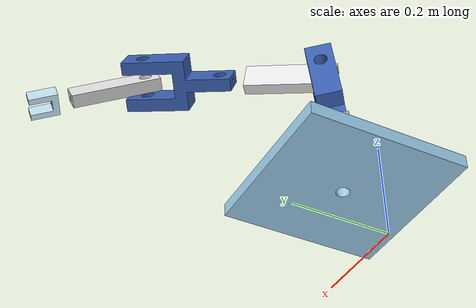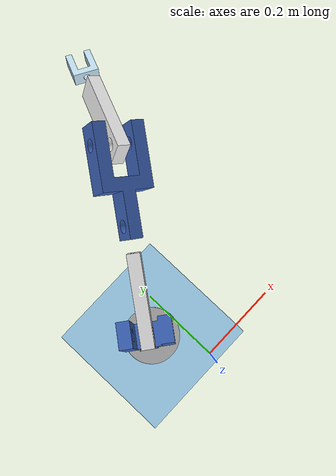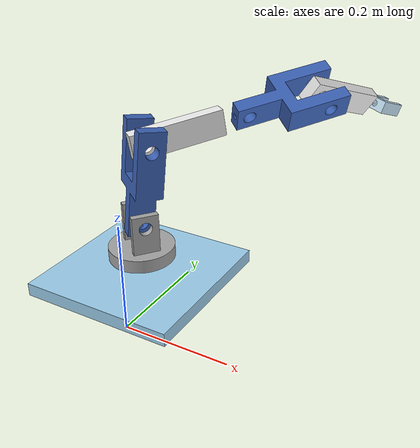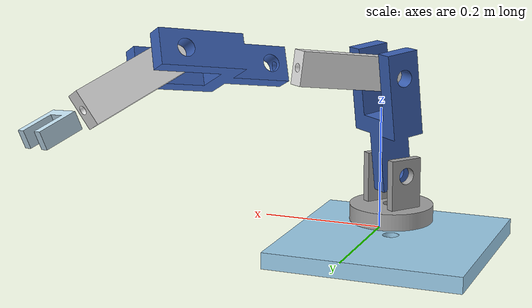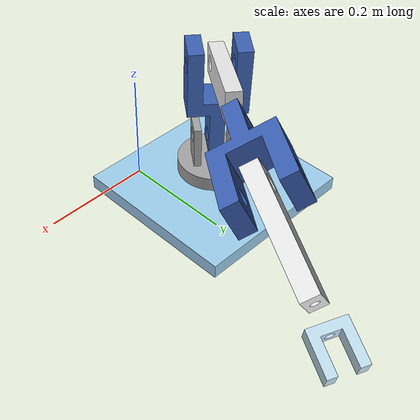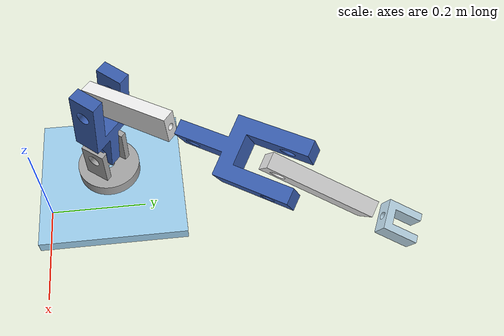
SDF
<?xml version="1.0" ?>
<!-- Generated using onshape-to-robot -->
<!-- Onshape document_id: 4af8569930bfdc776139afc6 -->
<sdf version="1.7">
  <model name="mybot">
    <!-- Link base -->
    <link name="base">
      <inertial>
        <pose>-0.0595984 0.133273 0.0193778 0 0 0</pose>
        <mass>6.33654</mass>
        <inertia>
          <ixx>0.0496653</ixx>
          <ixy>0</ixy>
          <ixz>0</ixz>
          <iyy>0.0496653</iyy>
          <iyz>0</iyz>
          <izz>0.0986492</izz>
        </inertia>
      </inertial>
      <pose>0 0 0 0 -0 0</pose>
      <!-- Part base -->
      <visual name="base_visual_mesh_1">
        <pose relative_to="base">-0.0595984 0.133273 0.00667784 0 -0 0</pose>
        <geometry>
          <mesh>
            <uri>model://mybot/assets/base.stl</uri>
          </mesh>
        </geometry>
        <material>
          <ambient>0.615686 0.811765 0.929412 1</ambient>
          <diffuse>0.615686 0.811765 0.929412 1</diffuse>
          <specular>0.1 0.1 0.1 1</specular>
          <emissive>0 0 0 0</emissive>
        </material>
      </visual>
      <collision name="base_collision_mesh_2">
        <pose relative_to="base">-0.0595984 0.133273 0.00667784 0 -0 0</pose>
        <geometry>
          <mesh>
            <uri>model://mybot/assets/base.stl</uri>
          </mesh>
        </geometry>
      </collision>
    </link>
    <joint name="base_fixed_world" type="fixed">
      <parent>world</parent>
      <child>base</child>
    </joint>
    <!-- Link swivle -->
    <link name="swivle">
      <inertial>
        <pose>0 -0 -0.0232936 0 0 0</pose>
        <mass>1.06472</mass>
        <inertia>
          <ixx>0.00152741</ixx>
          <ixy>0</ixy>
          <ixz>0</ixz>
          <iyy>0.0017074</iyy>
          <iyz>0</iyz>
          <izz>0.00204008</izz>
        </inertia>
      </inertial>
      <pose relative_to="base_rot">0 0 0 0 -0 0</pose>
      <!-- Part swivle -->
      <visual name="swivle_visual_mesh_1">
        <pose relative_to="swivle">0 0 0.0508 3.14159 -0 0</pose>
        <geometry>
          <mesh>
            <uri>model://mybot/assets/swivle.stl</uri>
          </mesh>
        </geometry>
        <material>
          <ambient>0.647059 0.647059 0.647059 1</ambient>
          <diffuse>0.647059 0.647059 0.647059 1</diffuse>
          <specular>0.1 0.1 0.1 1</specular>
          <emissive>0 0 0 0</emissive>
        </material>
      </visual>
      <collision name="swivle_collision_mesh_2">
        <pose relative_to="swivle">0 0 0.0508 3.14159 -0 0</pose>
        <geometry>
          <mesh>
            <uri>model://mybot/assets/swivle.stl</uri>
          </mesh>
        </geometry>
      </collision>
    </link>
    <!-- Link arm1 -->
    <link name="arm1">
      <inertial>
        <pose>-0.0757655 -0.0589887 -0.0127 0 0 0</pose>
        <mass>1.26286</mass>
        <inertia>
          <ixx>0.00280173</ixx>
          <ixy>-0.00158076</ixy>
          <ixz>-1e-11</ixz>
          <iyy>0.00360134</iyy>
          <iyz>-3.8e-11</iyz>
          <izz>0.0038425</izz>
        </inertia>
      </inertial>
      <pose relative_to="joint1">0 0 0 0 -0 0</pose>
      <!-- Part arm1 -->
      <visual name="arm1_visual_mesh_1">
        <pose relative_to="arm1">0 0.127 -0.0127 1.5708 1.5708 0</pose>
        <geometry>
          <mesh>
            <uri>model://mybot/assets/arm1.stl</uri>
          </mesh>
        </geometry>
        <material>
          <ambient>0.231373 0.380392 0.705882 1</ambient>
          <diffuse>0.231373 0.380392 0.705882 1</diffuse>
          <specular>0.1 0.1 0.1 1</specular>
          <emissive>0 0 0 0</emissive>
        </material>
      </visual>
      <collision name="arm1_collision_mesh_2">
        <pose relative_to="arm1">0 0.127 -0.0127 1.5708 1.5708 0</pose>
        <geometry>
          <mesh>
            <uri>model://mybot/assets/arm1.stl</uri>
          </mesh>
        </geometry>
      </collision>
    </link>
    <!-- Link arm2 -->
    <link name="arm2">
      <inertial>
        <pose>-0.0543508 -0.0377625 -0.0127 0 0 0</pose>
        <mass>0.575994</mass>
        <inertia>
          <ixx>0.000587462</ixx>
          <ixy>-0.00061082</ixy>
          <ixz>0</ixz>
          <iyy>0.00104221</iyy>
          <iyz>-0</iyz>
          <izz>0.00156698</izz>
        </inertia>
      </inertial>
      <pose relative_to="joint2">0 0 0 0 -0 0</pose>
      <!-- Part arm2 -->
      <visual name="arm2_visual_mesh_1">
        <pose relative_to="arm2">0.120251 0.220624 -0.0127 1.5708 1.5708 0</pose>
        <geometry>
          <mesh>
            <uri>model://mybot/assets/arm2.stl</uri>
          </mesh>
        </geometry>
        <material>
          <ambient>0.917647 0.917647 0.917647 1</ambient>
          <diffuse>0.917647 0.917647 0.917647 1</diffuse>
          <specular>0.1 0.1 0.1 1</specular>
          <emissive>0 0 0 0</emissive>
        </material>
      </visual>
      <collision name="arm2_collision_mesh_2">
        <pose relative_to="arm2">0.120251 0.220624 -0.0127 1.5708 1.5708 0</pose>
        <geometry>
          <mesh>
            <uri>model://mybot/assets/arm2.stl</uri>
          </mesh>
        </geometry>
      </collision>
    </link>
    <!-- Link arm1_2 -->
    <link name="arm1_2">
      <inertial>
        <pose>-1.33e-09 -3.237e-09 -0.146821 0 0 0</pose>
        <mass>1.26286</mass>
        <inertia>
          <ixx>0.00404872</ixx>
          <ixy>0.000401922</ixy>
          <ixz>1.97e-10</ixz>
          <iyy>0.00462585</iyy>
          <iyz>4.53e-10</iyz>
          <izz>0.001571</izz>
        </inertia>
      </inertial>
      <pose relative_to="wrist3">0 0 0 0 -0 0</pose>
      <!-- Part arm1_2 -->
      <visual name="arm1_2_visual_mesh_1">
        <pose relative_to="arm1_2">-0.0457458 -0.0891584 0.0272198 2.23233 -0 2.66753</pose>
        <geometry>
          <mesh>
            <uri>model://mybot/assets/arm1.stl</uri>
          </mesh>
        </geometry>
        <material>
          <ambient>0.231373 0.380392 0.705882 1</ambient>
          <diffuse>0.231373 0.380392 0.705882 1</diffuse>
          <specular>0.1 0.1 0.1 1</specular>
          <emissive>0 0 0 0</emissive>
        </material>
      </visual>
      <collision name="arm1_2_collision_mesh_2">
        <pose relative_to="arm1_2">-0.0457458 -0.0891584 0.0272198 2.23233 -0 2.66753</pose>
        <geometry>
          <mesh>
            <uri>model://mybot/assets/arm1.stl</uri>
          </mesh>
        </geometry>
      </collision>
    </link>
    <!-- Link arm2_2 -->
    <link name="arm2_2">
      <inertial>
        <pose>-0.0543508 -0.0377625 -0.0127 0 0 0</pose>
        <mass>0.575994</mass>
        <inertia>
          <ixx>0.000587462</ixx>
          <ixy>-0.00061082</ixy>
          <ixz>-0</ixz>
          <iyy>0.00104221</iyy>
          <iyz>0</iyz>
          <izz>0.00156698</izz>
        </inertia>
      </inertial>
      <pose relative_to="joint4">0 0 0 0 -0 0</pose>
      <!-- Part arm2_2 -->
      <visual name="arm2_2_visual_mesh_1">
        <pose relative_to="arm2_2">0.120251 0.220624 -0.0127 1.5708 1.5708 0</pose>
        <geometry>
          <mesh>
            <uri>model://mybot/assets/arm2.stl</uri>
          </mesh>
        </geometry>
        <material>
          <ambient>0.917647 0.917647 0.917647 1</ambient>
          <diffuse>0.917647 0.917647 0.917647 1</diffuse>
          <specular>0.1 0.1 0.1 1</specular>
          <emissive>0 0 0 0</emissive>
        </material>
      </visual>
      <collision name="arm2_2_collision_mesh_2">
        <pose relative_to="arm2_2">0.120251 0.220624 -0.0127 1.5708 1.5708 0</pose>
        <geometry>
          <mesh>
            <uri>model://mybot/assets/arm2.stl</uri>
          </mesh>
        </geometry>
      </collision>
    </link>
    <!-- Link hand -->
    <link name="hand">
      <inertial>
        <pose>-0 -0 -0.0252044 0 0 0</pose>
        <mass>0.11732</mass>
        <inertia>
          <ixx>4.12722e-05</ixx>
          <ixy>0</ixy>
          <ixz>0</ixz>
          <iyy>7.3382e-05</iyy>
          <iyz>-0</iyz>
          <izz>4.51044e-05</izz>
        </inertia>
      </inertial>
      <pose relative_to="wrist5">0 0 0 0 -0 0</pose>
      <!-- Part hand -->
      <visual name="hand_visual_mesh_1">
        <pose relative_to="hand">0.00580608 0.15067 0.407774 2.17802 -0 0</pose>
        <geometry>
          <mesh>
            <uri>model://mybot/assets/hand.stl</uri>
          </mesh>
        </geometry>
        <material>
          <ambient>0.768627 0.886275 0.952941 1</ambient>
          <diffuse>0.768627 0.886275 0.952941 1</diffuse>
          <specular>0.1 0.1 0.1 1</specular>
          <emissive>0 0 0 0</emissive>
        </material>
      </visual>
      <collision name="hand_collision_mesh_2">
        <pose relative_to="hand">0.00580608 0.15067 0.407774 2.17802 -0 0</pose>
        <geometry>
          <mesh>
            <uri>model://mybot/assets/hand.stl</uri>
          </mesh>
        </geometry>
      </collision>
    </link>
    <!-- Joint from arm2_2 to hand -->
    <joint name="wrist5" type="revolute">
      <pose relative_to="arm2_2">-0.146016 -0.101451 -0.0127 -1.5708 -1.20722 -0.963574</pose>
      <parent>arm2_2</parent>
      <child>hand</child>
      <axis>
        <xyz>0 0 1</xyz>
        <limit>
          <effort>10</effort>
          <velocity>10</velocity>
          <lower>-3.141592653589793</lower>
          <upper>3.141592653589793</upper>
        </limit>
        <dynamics>
          <friction>0.0</friction>
          <damping>0.0</damping>
        </dynamics>
      </axis>
    </joint>
    <!-- Joint from arm1_2 to arm2_2 -->
    <joint name="joint4" type="revolute">
      <pose relative_to="arm1_2">0.0112995 -0.00579758 -0.2032 1.5708 -1.48999 1.09674</pose>
      <parent>arm1_2</parent>
      <child>arm2_2</child>
      <axis>
        <xyz>0 0 1</xyz>
        <limit>
          <effort>10</effort>
          <velocity>10</velocity>
          <lower>-3.141592653589793</lower>
          <upper>3.141592653589793</upper>
        </limit>
        <dynamics>
          <friction>0.0</friction>
          <damping>0.0</damping>
        </dynamics>
      </axis>
    </joint>
    <!-- Joint from arm2 to arm1_2 -->
    <joint name="wrist3" type="revolute">
      <pose relative_to="arm2">-0.125156 -0.0869577 -0.0127 -0.607222 1.5708 0</pose>
      <parent>arm2</parent>
      <child>arm1_2</child>
      <axis>
        <xyz>0 0 1</xyz>
        <limit>
          <effort>10</effort>
          <velocity>10</velocity>
          <lower>-3.141592653589793</lower>
          <upper>3.141592653589793</upper>
        </limit>
        <dynamics>
          <friction>0.0</friction>
          <damping>0.0</damping>
        </dynamics>
      </axis>
    </joint>
    <!-- Joint from arm1 to arm2 -->
    <joint name="joint2" type="revolute">
      <pose relative_to="arm1">-0.120251 -0.0936238 -0 -0 0 -1.26071</pose>
      <parent>arm1</parent>
      <child>arm2</child>
      <axis>
        <xyz>0 0 1</xyz>
        <limit>
          <effort>10</effort>
          <velocity>10</velocity>
          <lower>-3.141592653589793</lower>
          <upper>3.141592653589793</upper>
        </limit>
        <dynamics>
          <friction>0.0</friction>
          <damping>0.0</damping>
        </dynamics>
      </axis>
    </joint>
    <!-- Joint from swivle to arm1 -->
    <joint name="joint1" type="revolute">
      <pose relative_to="swivle">-0.0127 -0 -0.0762 1.5708 -0.800967 -1.5708</pose>
      <parent>swivle</parent>
      <child>arm1</child>
      <axis>
        <xyz>0 0 1</xyz>
        <limit>
          <effort>10</effort>
          <velocity>10</velocity>
          <lower>-3.141592653589793</lower>
          <upper>3.141592653589793</upper>
        </limit>
        <dynamics>
          <friction>0.0</friction>
          <damping>0.0</damping>
        </dynamics>
      </axis>
    </joint>
    <!-- Joint from base to swivle -->
    <joint name="base_rot" type="revolute">
      <pose relative_to="base">-0.0595984 0.133273 0.0574778 3.14159 -0 2.48016</pose>
      <parent>base</parent>
      <child>swivle</child>
      <axis>
        <xyz>0 0 1</xyz>
        <limit>
          <effort>10</effort>
          <velocity>10</velocity>
          <lower>-3.141592653589793</lower>
          <upper>3.141592653589793</upper>
        </limit>
        <dynamics>
          <friction>0.0</friction>
          <damping>0.0</damping>
        </dynamics>
      </axis>
    </joint>

    <plugin filename="gz-sim-joint-position-controller-system" name="gz::sim::systems::JointPositionController">
        <joint_name>base_rot</joint_name>
        <p_gain>100.0</p_gain>
        <i_gain>0.1</i_gain>
        <d_gain>0.01</d_gain>
    </plugin>

    <plugin filename="gz-sim-joint-position-controller-system" name="gz::sim::systems::JointPositionController">
        <joint_name>joint1</joint_name>
        <p_gain>100.0</p_gain>
        <i_gain>0.1</i_gain>
        <d_gain>0.01</d_gain>
    </plugin>

    <plugin filename="gz-sim-joint-position-controller-system" name="gz::sim::systems::JointPositionController">
        <joint_name>joint2</joint_name>
        <p_gain>100.0</p_gain>
        <i_gain>0.1</i_gain>
        <d_gain>0.01</d_gain>
    </plugin>

    <plugin filename="gz-sim-joint-position-controller-system" name="gz::sim::systems::JointPositionController">
        <joint_name>wrist3</joint_name>
        <p_gain>100.0</p_gain>
        <i_gain>0.1</i_gain>
        <d_gain>0.01</d_gain>
    </plugin>

    <plugin filename="gz-sim-joint-position-controller-system" name="gz::sim::systems::JointPositionController">
        <joint_name>joint4</joint_name>
        <p_gain>100.0</p_gain>
        <i_gain>0.1</i_gain>
        <d_gain>0.01</d_gain>
    </plugin>

    <plugin filename="gz-sim-joint-position-controller-system" name="gz::sim::systems::JointPositionController">
        <joint_name>wrist5</joint_name>
        <p_gain>100.0</p_gain>
        <i_gain>0.1</i_gain>
        <d_gain>0.01</d_gain>
    </plugin>

    <plugin filename="gz-sim-joint-state-publisher-system" name="gz::sim::systems::JointStatePublisher">
    </plugin>

  </model>
</sdf>
